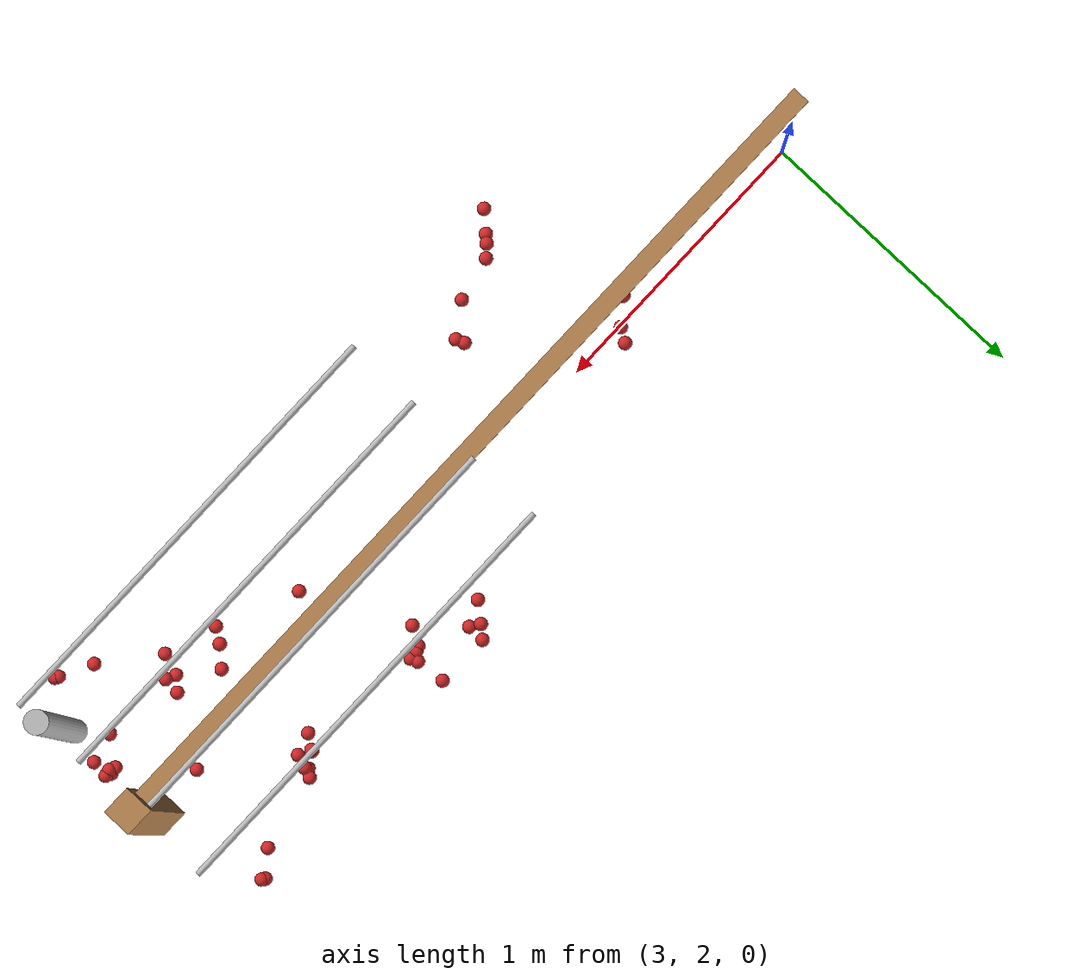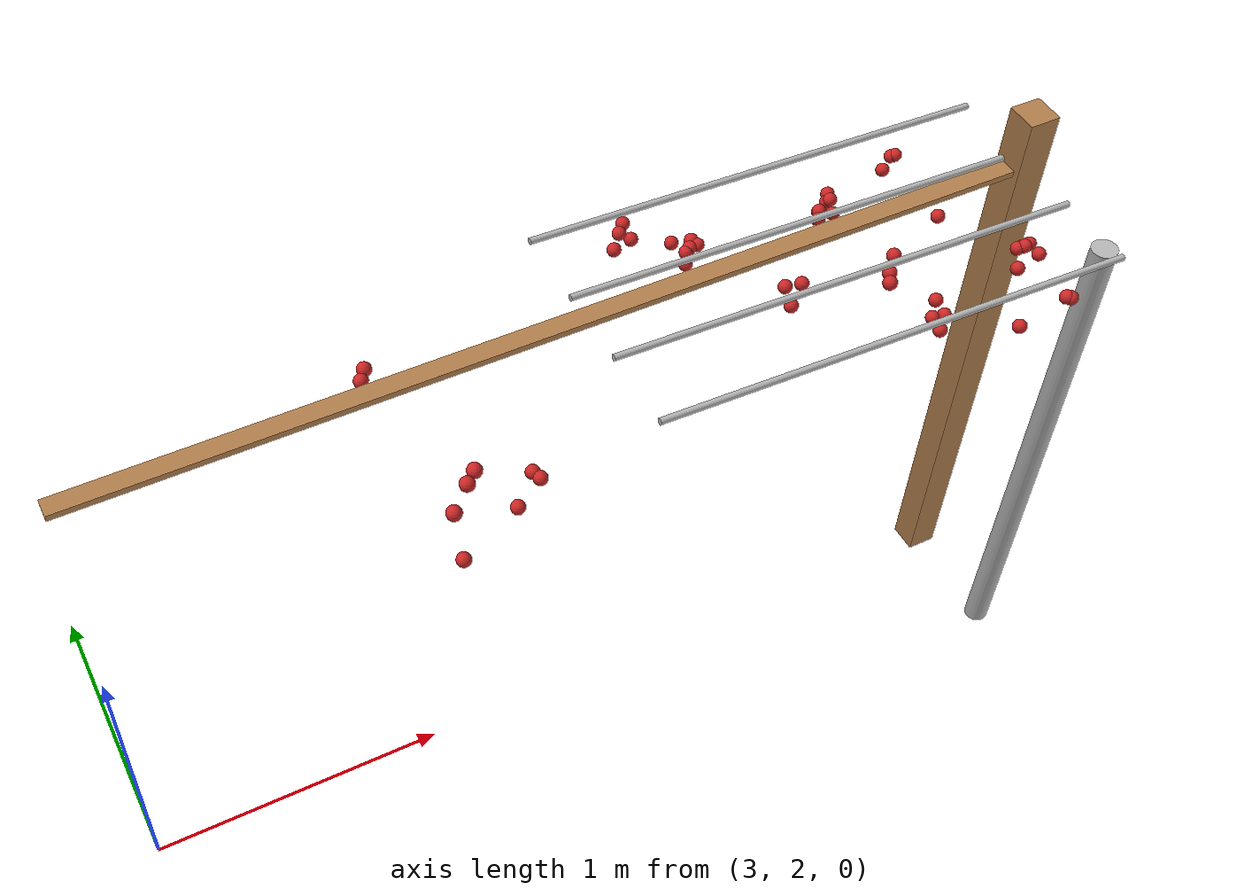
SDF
<sdf version="1.4">
 <model name="pergola">
  <include><name>post_14</name><pose>6.0 2.0 0 0 0 0</pose><uri>model://post</uri></include>
  <link name="beam_8">
   <pose>4.5 2.0 1.81 0 0 0</pose>
   <collision name="collision"><geometry><box><size>3.0 0.06 0.02</size></box></geometry></collision>
   <visual name="visual">
    <geometry><box><size>3.0 0.06 0.02</size></box></geometry>
    <material>
     <script>
      <uri>model://post/materials/scripts</uri>
      <uri>model://post/materials/textures</uri>
      <name>Post/Wood</name>
     </script>
    </material>
   </visual>
   <inertial>
    <mass>5</mass>
    <inertia>
     <ixx>0.0016666666666666668</ixx>
     <ixy>0.0</ixy>
     <ixz>0.0</ixz>
     <iyy>3.7515</iyy>
     <iyz>0.0</iyz>
     <izz>3.750166666666667</izz>
    </inertia>
   </inertial>
  </link>
  <include><name>tree_11</name><pose>6.0 1.6 0 0 0 0</pose><uri>model://tree_trunk</uri></include>
  <link name="vine_53">
   <pose>5.25 1.53 1.85 0 -1.5374753309166493 0</pose>
   <collision name="collision">
    <geometry><cylinder><radius>0.01</radius><length>1.5008331019803633</length></cylinder></geometry>
   </collision>
   <visual name="visual">
    <geometry><cylinder><radius>0.01</radius><length>1.5008331019803633</length></cylinder></geometry>
    <material>
     <script>
      <uri>model://tree_trunk/materials/scripts</uri>
      <uri>model://tree_trunk/materials/textures</uri>
      <name>Tree/Bark</name>
     </script>
    </material>
   </visual>
   <inertial>
    <mass>5</mass>
    <inertia>
     <ixx>0.9386666666666668</ixx>
     <ixy>0.0</ixy>
     <ixz>0.0</ixz>
     <iyy>0.9386666666666668</iyy>
     <iyz>0.0</iyz>
     <izz>0.00025</izz>
    </inertia>
   </inertial>
  </link>
  <link name="vine_55">
   <pose>5.25 1.78 1.85 0 -1.5374753309166493 0</pose>
   <collision name="collision">
    <geometry><cylinder><radius>0.01</radius><length>1.5008331019803633</length></cylinder></geometry>
   </collision>
   <visual name="visual">
    <geometry><cylinder><radius>0.01</radius><length>1.5008331019803633</length></cylinder></geometry>
    <material>
     <script>
      <uri>model://tree_trunk/materials/scripts</uri>
      <uri>model://tree_trunk/materials/textures</uri>
      <name>Tree/Bark</name>
     </script>
    </material>
   </visual>
   <inertial>
    <mass>5</mass>
    <inertia>
     <ixx>0.9386666666666668</ixx>
     <ixy>0.0</ixy>
     <ixz>0.0</ixz>
     <iyy>0.9386666666666668</iyy>
     <iyz>0.0</iyz>
     <izz>0.00025</izz>
    </inertia>
   </inertial>
  </link>
  <link name="vine_57">
   <pose>5.25 2.03 1.85 0 -1.5374753309166493 0</pose>
   <collision name="collision">
    <geometry><cylinder><radius>0.01</radius><length>1.5008331019803633</length></cylinder></geometry>
   </collision>
   <visual name="visual">
    <geometry><cylinder><radius>0.01</radius><length>1.5008331019803633</length></cylinder></geometry>
    <material>
     <script>
      <uri>model://tree_trunk/materials/scripts</uri>
      <uri>model://tree_trunk/materials/textures</uri>
      <name>Tree/Bark</name>
     </script>
    </material>
   </visual>
   <inertial>
    <mass>5</mass>
    <inertia>
     <ixx>0.9386666666666668</ixx>
     <ixy>0.0</ixy>
     <ixz>0.0</ixz>
     <iyy>0.9386666666666668</iyy>
     <iyz>0.0</iyz>
     <izz>0.00025</izz>
    </inertia>
   </inertial>
  </link>
  <link name="vine_59">
   <pose>5.25 2.28 1.85 0 -1.5374753309166493 0</pose>
   <collision name="collision">
    <geometry><cylinder><radius>0.01</radius><length>1.5008331019803633</length></cylinder></geometry>
   </collision>
   <visual name="visual">
    <geometry><cylinder><radius>0.01</radius><length>1.5008331019803633</length></cylinder></geometry>
    <material>
     <script>
      <uri>model://tree_trunk/materials/scripts</uri>
      <uri>model://tree_trunk/materials/textures</uri>
      <name>Tree/Bark</name>
     </script>
    </material>
   </visual>
   <inertial>
    <mass>5</mass>
    <inertia>
     <ixx>0.9386666666666668</ixx>
     <ixy>0.0</ixy>
     <ixz>0.0</ixz>
     <iyy>0.9386666666666668</iyy>
     <iyz>0.0</iyz>
     <izz>0.00025</izz>
    </inertia>
   </inertial>
  </link>
  <link name="fruit_34">
   <pose>5.774526865186715 2.0521322052493067 1.6482340957908381 0 0 0</pose>
   <collision name="fruit_collision_34"><geometry><sphere><radius>0.022</radius></sphere></geometry></collision>
   <visual name="visual">
    <geometry><sphere><radius>0.022</radius></sphere></geometry>
    <material><script><name>Gazebo/Red</name></script></material>
   </visual>
   <inertial>
    <mass>0.05</mass>
    <inertia>
     <ixx>9.679999999999999e-06</ixx>
     <ixy>0.0</ixy>
     <ixz>0.0</ixz>
     <iyy>9.679999999999999e-06</iyy>
     <iyz>0.0</iyz>
     <izz>9.679999999999999e-06</izz>
    </inertia>
   </inertial>
   <sensor name="fruit_contact_34" type="contact">
    <plugin name="contact_plugin_34" filename="libcontact_plugin.so"/>
    <contact><collision>fruit_collision_34</collision><topic>fruit_contact_topic_34</topic></contact>
   </sensor>
  </link>
  <link name="fruit_50">
   <pose>3.8211082510275456 2.0212028844527956 1.794791626858286 0 0 0</pose>
   <collision name="fruit_collision_50"><geometry><sphere><radius>0.022</radius></sphere></geometry></collision>
   <visual name="visual">
    <geometry><sphere><radius>0.022</radius></sphere></geometry>
    <material><script><name>Gazebo/Red</name></script></material>
   </visual>
   <inertial>
    <mass>0.05</mass>
    <inertia>
     <ixx>9.679999999999999e-06</ixx>
     <ixy>0.0</ixy>
     <ixz>0.0</ixz>
     <iyy>9.679999999999999e-06</iyy>
     <iyz>0.0</iyz>
     <izz>9.679999999999999e-06</izz>
    </inertia>
   </inertial>
   <sensor name="fruit_contact_50" type="contact">
    <plugin name="contact_plugin_50" filename="libcontact_plugin.so"/>
    <contact><collision>fruit_collision_50</collision><topic>fruit_contact_topic_50</topic></contact>
   </sensor>
  </link>
  <link name="fruit_75">
   <pose>4.157432896309954 1.6544012899420455 1.573133336098839 0 0 0</pose>
   <collision name="fruit_collision_75"><geometry><sphere><radius>0.022</radius></sphere></geometry></collision>
   <visual name="visual">
    <geometry><sphere><radius>0.022</radius></sphere></geometry>
    <material><script><name>Gazebo/Red</name></script></material>
   </visual>
   <inertial>
    <mass>0.05</mass>
    <inertia>
     <ixx>9.679999999999999e-06</ixx>
     <ixy>0.0</ixy>
     <ixz>0.0</ixz>
     <iyy>9.679999999999999e-06</iyy>
     <iyz>0.0</iyz>
     <izz>9.679999999999999e-06</izz>
    </inertia>
   </inertial>
   <sensor name="fruit_contact_75" type="contact">
    <plugin name="contact_plugin_75" filename="libcontact_plugin.so"/>
    <contact><collision>fruit_collision_75</collision><topic>fruit_contact_topic_75</topic></contact>
   </sensor>
  </link>
  <link name="fruit_82">
   <pose>3.9186838672898454 1.528496420877327 1.823706306297951 0 0 0</pose>
   <collision name="fruit_collision_82"><geometry><sphere><radius>0.022</radius></sphere></geometry></collision>
   <visual name="visual">
    <geometry><sphere><radius>0.022</radius></sphere></geometry>
    <material><script><name>Gazebo/Red</name></script></material>
   </visual>
   <inertial>
    <mass>0.05</mass>
    <inertia>
     <ixx>9.679999999999999e-06</ixx>
     <ixy>0.0</ixy>
     <ixz>0.0</ixz>
     <iyy>9.679999999999999e-06</iyy>
     <iyz>0.0</iyz>
     <izz>9.679999999999999e-06</izz>
    </inertia>
   </inertial>
   <sensor name="fruit_contact_82" type="contact">
    <plugin name="contact_plugin_82" filename="libcontact_plugin.so"/>
    <contact><collision>fruit_collision_82</collision><topic>fruit_contact_topic_82</topic></contact>
   </sensor>
  </link>
  <link name="fruit_83">
   <pose>5.058644379294178 2.414018382648379 1.5297664557481694 0 0 0</pose>
   <collision name="fruit_collision_83"><geometry><sphere><radius>0.022</radius></sphere></geometry></collision>
   <visual name="visual">
    <geometry><sphere><radius>0.022</radius></sphere></geometry>
    <material><script><name>Gazebo/Red</name></script></material>
   </visual>
   <inertial>
    <mass>0.05</mass>
    <inertia>
     <ixx>9.679999999999999e-06</ixx>
     <ixy>0.0</ixy>
     <ixz>0.0</ixz>
     <iyy>9.679999999999999e-06</iyy>
     <iyz>0.0</iyz>
     <izz>9.679999999999999e-06</izz>
    </inertia>
   </inertial>
   <sensor name="fruit_contact_83" type="contact">
    <plugin name="contact_plugin_83" filename="libcontact_plugin.so"/>
    <contact><collision>fruit_collision_83</collision><topic>fruit_contact_topic_83</topic></contact>
   </sensor>
  </link>
  <link name="fruit_85">
   <pose>5.754436804988945 1.5957983701257321 1.5985775554802049 0 0 0</pose>
   <collision name="fruit_collision_85"><geometry><sphere><radius>0.022</radius></sphere></geometry></collision>
   <visual name="visual">
    <geometry><sphere><radius>0.022</radius></sphere></geometry>
    <material><script><name>Gazebo/Red</name></script></material>
   </visual>
   <inertial>
    <mass>0.05</mass>
    <inertia>
     <ixx>9.679999999999999e-06</ixx>
     <ixy>0.0</ixy>
     <ixz>0.0</ixz>
     <iyy>9.679999999999999e-06</iyy>
     <iyz>0.0</iyz>
     <izz>9.679999999999999e-06</izz>
    </inertia>
   </inertial>
   <sensor name="fruit_contact_85" type="contact">
    <plugin name="contact_plugin_85" filename="libcontact_plugin.so"/>
    <contact><collision>fruit_collision_85</collision><topic>fruit_contact_topic_85</topic></contact>
   </sensor>
  </link>
  <link name="fruit_87">
   <pose>5.459513977028177 2.224504422915766 1.6211727621777672 0 0 0</pose>
   <collision name="fruit_collision_87"><geometry><sphere><radius>0.022</radius></sphere></geometry></collision>
   <visual name="visual">
    <geometry><sphere><radius>0.022</radius></sphere></geometry>
    <material><script><name>Gazebo/Red</name></script></material>
   </visual>
   <inertial>
    <mass>0.05</mass>
    <inertia>
     <ixx>9.679999999999999e-06</ixx>
     <ixy>0.0</ixy>
     <ixz>0.0</ixz>
     <iyy>9.679999999999999e-06</iyy>
     <iyz>0.0</iyz>
     <izz>9.679999999999999e-06</izz>
    </inertia>
   </inertial>
   <sensor name="fruit_contact_87" type="contact">
    <plugin name="contact_plugin_87" filename="libcontact_plugin.so"/>
    <contact><collision>fruit_collision_87</collision><topic>fruit_contact_topic_87</topic></contact>
   </sensor>
  </link>
  <link name="fruit_89">
   <pose>3.956462008325255 1.568141206261927 1.5605742490254866 0 0 0</pose>
   <collision name="fruit_collision_89"><geometry><sphere><radius>0.022</radius></sphere></geometry></collision>
   <visual name="visual">
    <geometry><sphere><radius>0.022</radius></sphere></geometry>
    <material><script><name>Gazebo/Red</name></script></material>
   </visual>
   <inertial>
    <mass>0.05</mass>
    <inertia>
     <ixx>9.679999999999999e-06</ixx>
     <ixy>0.0</ixy>
     <ixz>0.0</ixz>
     <iyy>9.679999999999999e-06</iyy>
     <iyz>0.0</iyz>
     <izz>9.679999999999999e-06</izz>
    </inertia>
   </inertial>
   <sensor name="fruit_contact_89" type="contact">
    <plugin name="contact_plugin_89" filename="libcontact_plugin.so"/>
    <contact><collision>fruit_collision_89</collision><topic>fruit_contact_topic_89</topic></contact>
   </sensor>
  </link>
  <link name="fruit_91">
   <pose>5.802791198064349 2.373879916377492 1.5739618234148434 0 0 0</pose>
   <collision name="fruit_collision_91"><geometry><sphere><radius>0.022</radius></sphere></geometry></collision>
   <visual name="visual">
    <geometry><sphere><radius>0.022</radius></sphere></geometry>
    <material><script><name>Gazebo/Red</name></script></material>
   </visual>
   <inertial>
    <mass>0.05</mass>
    <inertia>
     <ixx>9.679999999999999e-06</ixx>
     <ixy>0.0</ixy>
     <ixz>0.0</ixz>
     <iyy>9.679999999999999e-06</iyy>
     <iyz>0.0</iyz>
     <izz>9.679999999999999e-06</izz>
    </inertia>
   </inertial>
   <sensor name="fruit_contact_91" type="contact">
    <plugin name="contact_plugin_91" filename="libcontact_plugin.so"/>
    <contact><collision>fruit_collision_91</collision><topic>fruit_contact_topic_91</topic></contact>
   </sensor>
  </link>
  <link name="fruit_94">
   <pose>5.159846447617254 1.9078280667122707 1.6652576838666382 0 0 0</pose>
   <collision name="fruit_collision_94"><geometry><sphere><radius>0.022</radius></sphere></geometry></collision>
   <visual name="visual">
    <geometry><sphere><radius>0.022</radius></sphere></geometry>
    <material><script><name>Gazebo/Red</name></script></material>
   </visual>
   <inertial>
    <mass>0.05</mass>
    <inertia>
     <ixx>9.679999999999999e-06</ixx>
     <ixy>0.0</ixy>
     <ixz>0.0</ixz>
     <iyy>9.679999999999999e-06</iyy>
     <iyz>0.0</iyz>
     <izz>9.679999999999999e-06</izz>
    </inertia>
   </inertial>
   <sensor name="fruit_contact_94" type="contact">
    <plugin name="contact_plugin_94" filename="libcontact_plugin.so"/>
    <contact><collision>fruit_collision_94</collision><topic>fruit_contact_topic_94</topic></contact>
   </sensor>
  </link>
  <link name="fruit_104">
   <pose>4.80422927970657 2.3279642003623073 1.6779828249168487 0 0 0</pose>
   <collision name="fruit_collision_104"><geometry><sphere><radius>0.022</radius></sphere></geometry></collision>
   <visual name="visual">
    <geometry><sphere><radius>0.022</radius></sphere></geometry>
    <material><script><name>Gazebo/Red</name></script></material>
   </visual>
   <inertial>
    <mass>0.05</mass>
    <inertia>
     <ixx>9.679999999999999e-06</ixx>
     <ixy>0.0</ixy>
     <ixz>0.0</ixz>
     <iyy>9.679999999999999e-06</iyy>
     <iyz>0.0</iyz>
     <izz>9.679999999999999e-06</izz>
    </inertia>
   </inertial>
   <sensor name="fruit_contact_104" type="contact">
    <plugin name="contact_plugin_104" filename="libcontact_plugin.so"/>
    <contact><collision>fruit_collision_104</collision><topic>fruit_contact_topic_104</topic></contact>
   </sensor>
  </link>
  <link name="fruit_107">
   <pose>4.998689614279883 2.232698899707509 1.6202635907886294 0 0 0</pose>
   <collision name="fruit_collision_107"><geometry><sphere><radius>0.022</radius></sphere></geometry></collision>
   <visual name="visual">
    <geometry><sphere><radius>0.022</radius></sphere></geometry>
    <material><script><name>Gazebo/Red</name></script></material>
   </visual>
   <inertial>
    <mass>0.05</mass>
    <inertia>
     <ixx>9.679999999999999e-06</ixx>
     <ixy>0.0</ixy>
     <ixz>0.0</ixz>
     <iyy>9.679999999999999e-06</iyy>
     <iyz>0.0</iyz>
     <izz>9.679999999999999e-06</izz>
    </inertia>
   </inertial>
   <sensor name="fruit_contact_107" type="contact">
    <plugin name="contact_plugin_107" filename="libcontact_plugin.so"/>
    <contact><collision>fruit_collision_107</collision><topic>fruit_contact_topic_107</topic></contact>
   </sensor>
  </link>
  <link name="fruit_114">
   <pose>5.412163071134331 1.7989136187695607 1.742437584145862 0 0 0</pose>
   <collision name="fruit_collision_114"><geometry><sphere><radius>0.022</radius></sphere></geometry></collision>
   <visual name="visual">
    <geometry><sphere><radius>0.022</radius></sphere></geometry>
    <material><script><name>Gazebo/Red</name></script></material>
   </visual>
   <inertial>
    <mass>0.05</mass>
    <inertia>
     <ixx>9.679999999999999e-06</ixx>
     <ixy>0.0</ixy>
     <ixz>0.0</ixz>
     <iyy>9.679999999999999e-06</iyy>
     <iyz>0.0</iyz>
     <izz>9.679999999999999e-06</izz>
    </inertia>
   </inertial>
   <sensor name="fruit_contact_114" type="contact">
    <plugin name="contact_plugin_114" filename="libcontact_plugin.so"/>
    <contact><collision>fruit_collision_114</collision><topic>fruit_contact_topic_114</topic></contact>
   </sensor>
  </link>
  <link name="fruit_145">
   <pose>5.583333734365892 1.7304436619730743 1.5364940392933226 0 0 0</pose>
   <collision name="fruit_collision_145"><geometry><sphere><radius>0.022</radius></sphere></geometry></collision>
   <visual name="visual">
    <geometry><sphere><radius>0.022</radius></sphere></geometry>
    <material><script><name>Gazebo/Red</name></script></material>
   </visual>
   <inertial>
    <mass>0.05</mass>
    <inertia>
     <ixx>9.679999999999999e-06</ixx>
     <ixy>0.0</ixy>
     <ixz>0.0</ixz>
     <iyy>9.679999999999999e-06</iyy>
     <iyz>0.0</iyz>
     <izz>9.679999999999999e-06</izz>
    </inertia>
   </inertial>
   <sensor name="fruit_contact_145" type="contact">
    <plugin name="contact_plugin_145" filename="libcontact_plugin.so"/>
    <contact><collision>fruit_collision_145</collision><topic>fruit_contact_topic_145</topic></contact>
   </sensor>
  </link>
  <link name="fruit_152">
   <pose>5.877671136044582 1.7798271889963877 1.620259435995187 0 0 0</pose>
   <collision name="fruit_collision_152"><geometry><sphere><radius>0.022</radius></sphere></geometry></collision>
   <visual name="visual">
    <geometry><sphere><radius>0.022</radius></sphere></geometry>
    <material><script><name>Gazebo/Red</name></script></material>
   </visual>
   <inertial>
    <mass>0.05</mass>
    <inertia>
     <ixx>9.679999999999999e-06</ixx>
     <ixy>0.0</ixy>
     <ixz>0.0</ixz>
     <iyy>9.679999999999999e-06</iyy>
     <iyz>0.0</iyz>
     <izz>9.679999999999999e-06</izz>
    </inertia>
   </inertial>
   <sensor name="fruit_contact_152" type="contact">
    <plugin name="contact_plugin_152" filename="libcontact_plugin.so"/>
    <contact><collision>fruit_collision_152</collision><topic>fruit_contact_topic_152</topic></contact>
   </sensor>
  </link>
  <link name="fruit_157">
   <pose>5.049208604171384 2.296246360209251 1.6115604856060919 0 0 0</pose>
   <collision name="fruit_collision_157"><geometry><sphere><radius>0.022</radius></sphere></geometry></collision>
   <visual name="visual">
    <geometry><sphere><radius>0.022</radius></sphere></geometry>
    <material><script><name>Gazebo/Red</name></script></material>
   </visual>
   <inertial>
    <mass>0.05</mass>
    <inertia>
     <ixx>9.679999999999999e-06</ixx>
     <ixy>0.0</ixy>
     <ixz>0.0</ixz>
     <iyy>9.679999999999999e-06</iyy>
     <iyz>0.0</iyz>
     <izz>9.679999999999999e-06</izz>
    </inertia>
   </inertial>
   <sensor name="fruit_contact_157" type="contact">
    <plugin name="contact_plugin_157" filename="libcontact_plugin.so"/>
    <contact><collision>fruit_collision_157</collision><topic>fruit_contact_topic_157</topic></contact>
   </sensor>
  </link>
  <link name="fruit_177">
   <pose>5.4923204032210435 2.2704755800701895 1.6026721185577912 0 0 0</pose>
   <collision name="fruit_collision_177"><geometry><sphere><radius>0.022</radius></sphere></geometry></collision>
   <visual name="visual">
    <geometry><sphere><radius>0.022</radius></sphere></geometry>
    <material><script><name>Gazebo/Red</name></script></material>
   </visual>
   <inertial>
    <mass>0.05</mass>
    <inertia>
     <ixx>9.679999999999999e-06</ixx>
     <ixy>0.0</ixy>
     <ixz>0.0</ixz>
     <iyy>9.679999999999999e-06</iyy>
     <iyz>0.0</iyz>
     <izz>9.679999999999999e-06</izz>
    </inertia>
   </inertial>
   <sensor name="fruit_contact_177" type="contact">
    <plugin name="contact_plugin_177" filename="libcontact_plugin.so"/>
    <contact><collision>fruit_collision_177</collision><topic>fruit_contact_topic_177</topic></contact>
   </sensor>
  </link>
  <link name="fruit_195">
   <pose>5.249236135146322 1.9881662277160639 1.6450259633704147 0 0 0</pose>
   <collision name="fruit_collision_195"><geometry><sphere><radius>0.022</radius></sphere></geometry></collision>
   <visual name="visual">
    <geometry><sphere><radius>0.022</radius></sphere></geometry>
    <material><script><name>Gazebo/Red</name></script></material>
   </visual>
   <inertial>
    <mass>0.05</mass>
    <inertia>
     <ixx>9.679999999999999e-06</ixx>
     <ixy>0.0</ixy>
     <ixz>0.0</ixz>
     <iyy>9.679999999999999e-06</iyy>
     <iyz>0.0</iyz>
     <izz>9.679999999999999e-06</izz>
    </inertia>
   </inertial>
   <sensor name="fruit_contact_195" type="contact">
    <plugin name="contact_plugin_195" filename="libcontact_plugin.so"/>
    <contact><collision>fruit_collision_195</collision><topic>fruit_contact_topic_195</topic></contact>
   </sensor>
  </link>
  <link name="fruit_207">
   <pose>5.942102102008424 1.8623589062769437 1.6060157953697836 0 0 0</pose>
   <collision name="fruit_collision_207"><geometry><sphere><radius>0.022</radius></sphere></geometry></collision>
   <visual name="visual">
    <geometry><sphere><radius>0.022</radius></sphere></geometry>
    <material><script><name>Gazebo/Red</name></script></material>
   </visual>
   <inertial>
    <mass>0.05</mass>
    <inertia>
     <ixx>9.679999999999999e-06</ixx>
     <ixy>0.0</ixy>
     <ixz>0.0</ixz>
     <iyy>9.679999999999999e-06</iyy>
     <iyz>0.0</iyz>
     <izz>9.679999999999999e-06</izz>
    </inertia>
   </inertial>
   <sensor name="fruit_contact_207" type="contact">
    <plugin name="contact_plugin_207" filename="libcontact_plugin.so"/>
    <contact><collision>fruit_collision_207</collision><topic>fruit_contact_topic_207</topic></contact>
   </sensor>
  </link>
  <link name="fruit_208">
   <pose>5.032615775787639 2.2888932451619763 1.6066804180607057 0 0 0</pose>
   <collision name="fruit_collision_208"><geometry><sphere><radius>0.022</radius></sphere></geometry></collision>
   <visual name="visual">
    <geometry><sphere><radius>0.022</radius></sphere></geometry>
    <material><script><name>Gazebo/Red</name></script></material>
   </visual>
   <inertial>
    <mass>0.05</mass>
    <inertia>
     <ixx>9.679999999999999e-06</ixx>
     <ixy>0.0</ixy>
     <ixz>0.0</ixz>
     <iyy>9.679999999999999e-06</iyy>
     <iyz>0.0</iyz>
     <izz>9.679999999999999e-06</izz>
    </inertia>
   </inertial>
   <sensor name="fruit_contact_208" type="contact">
    <plugin name="contact_plugin_208" filename="libcontact_plugin.so"/>
    <contact><collision>fruit_collision_208</collision><topic>fruit_contact_topic_208</topic></contact>
   </sensor>
  </link>
  <link name="fruit_211">
   <pose>5.877277754397528 2.4328555021479743 1.5576581599371886 0 0 0</pose>
   <collision name="fruit_collision_211"><geometry><sphere><radius>0.022</radius></sphere></geometry></collision>
   <visual name="visual">
    <geometry><sphere><radius>0.022</radius></sphere></geometry>
    <material><script><name>Gazebo/Red</name></script></material>
   </visual>
   <inertial>
    <mass>0.05</mass>
    <inertia>
     <ixx>9.679999999999999e-06</ixx>
     <ixy>0.0</ixy>
     <ixz>0.0</ixz>
     <iyy>9.679999999999999e-06</iyy>
     <iyz>0.0</iyz>
     <izz>9.679999999999999e-06</izz>
    </inertia>
   </inertial>
   <sensor name="fruit_contact_211" type="contact">
    <plugin name="contact_plugin_211" filename="libcontact_plugin.so"/>
    <contact><collision>fruit_collision_211</collision><topic>fruit_contact_topic_211</topic></contact>
   </sensor>
  </link>
  <link name="fruit_213">
   <pose>5.9639935561905 1.8659235977885358 1.601489313213986 0 0 0</pose>
   <collision name="fruit_collision_213"><geometry><sphere><radius>0.022</radius></sphere></geometry></collision>
   <visual name="visual">
    <geometry><sphere><radius>0.022</radius></sphere></geometry>
    <material><script><name>Gazebo/Red</name></script></material>
   </visual>
   <inertial>
    <mass>0.05</mass>
    <inertia>
     <ixx>9.679999999999999e-06</ixx>
     <ixy>0.0</ixy>
     <ixz>0.0</ixz>
     <iyy>9.679999999999999e-06</iyy>
     <iyz>0.0</iyz>
     <izz>9.679999999999999e-06</izz>
    </inertia>
   </inertial>
   <sensor name="fruit_contact_213" type="contact">
    <plugin name="contact_plugin_213" filename="libcontact_plugin.so"/>
    <contact><collision>fruit_collision_213</collision><topic>fruit_contact_topic_213</topic></contact>
   </sensor>
  </link>
  <link name="fruit_227">
   <pose>4.2597573813946665 1.7240518831398615 1.5653774266928455 0 0 0</pose>
   <collision name="fruit_collision_227"><geometry><sphere><radius>0.022</radius></sphere></geometry></collision>
   <visual name="visual">
    <geometry><sphere><radius>0.022</radius></sphere></geometry>
    <material><script><name>Gazebo/Red</name></script></material>
   </visual>
   <inertial>
    <mass>0.05</mass>
    <inertia>
     <ixx>9.679999999999999e-06</ixx>
     <ixy>0.0</ixy>
     <ixz>0.0</ixz>
     <iyy>9.679999999999999e-06</iyy>
     <iyz>0.0</iyz>
     <izz>9.679999999999999e-06</izz>
    </inertia>
   </inertial>
   <sensor name="fruit_contact_227" type="contact">
    <plugin name="contact_plugin_227" filename="libcontact_plugin.so"/>
    <contact><collision>fruit_collision_227</collision><topic>fruit_contact_topic_227</topic></contact>
   </sensor>
  </link>
  <link name="fruit_231">
   <pose>3.991070745218517 1.6067411499962172 1.813265376457121 0 0 0</pose>
   <collision name="fruit_collision_231"><geometry><sphere><radius>0.022</radius></sphere></geometry></collision>
   <visual name="visual">
    <geometry><sphere><radius>0.022</radius></sphere></geometry>
    <material><script><name>Gazebo/Red</name></script></material>
   </visual>
   <inertial>
    <mass>0.05</mass>
    <inertia>
     <ixx>9.679999999999999e-06</ixx>
     <ixy>0.0</ixy>
     <ixz>0.0</ixz>
     <iyy>9.679999999999999e-06</iyy>
     <iyz>0.0</iyz>
     <izz>9.679999999999999e-06</izz>
    </inertia>
   </inertial>
   <sensor name="fruit_contact_231" type="contact">
    <plugin name="contact_plugin_231" filename="libcontact_plugin.so"/>
    <contact><collision>fruit_collision_231</collision><topic>fruit_contact_topic_231</topic></contact>
   </sensor>
  </link>
  <link name="fruit_232">
   <pose>5.887386990213997 2.4256892391077822 1.5641177727466637 0 0 0</pose>
   <collision name="fruit_collision_232"><geometry><sphere><radius>0.022</radius></sphere></geometry></collision>
   <visual name="visual">
    <geometry><sphere><radius>0.022</radius></sphere></geometry>
    <material><script><name>Gazebo/Red</name></script></material>
   </visual>
   <inertial>
    <mass>0.05</mass>
    <inertia>
     <ixx>9.679999999999999e-06</ixx>
     <ixy>0.0</ixy>
     <ixz>0.0</ixz>
     <iyy>9.679999999999999e-06</iyy>
     <iyz>0.0</iyz>
     <izz>9.679999999999999e-06</izz>
    </inertia>
   </inertial>
   <sensor name="fruit_contact_232" type="contact">
    <plugin name="contact_plugin_232" filename="libcontact_plugin.so"/>
    <contact><collision>fruit_collision_232</collision><topic>fruit_contact_topic_232</topic></contact>
   </sensor>
  </link>
  <link name="fruit_239">
   <pose>3.8963078821163157 2.0807879305289956 1.7808054475599573 0 0 0</pose>
   <collision name="fruit_collision_239"><geometry><sphere><radius>0.022</radius></sphere></geometry></collision>
   <visual name="visual">
    <geometry><sphere><radius>0.022</radius></sphere></geometry>
    <material><script><name>Gazebo/Red</name></script></material>
   </visual>
   <inertial>
    <mass>0.05</mass>
    <inertia>
     <ixx>9.679999999999999e-06</ixx>
     <ixy>0.0</ixy>
     <ixz>0.0</ixz>
     <iyy>9.679999999999999e-06</iyy>
     <iyz>0.0</iyz>
     <izz>9.679999999999999e-06</izz>
    </inertia>
   </inertial>
   <sensor name="fruit_contact_239" type="contact">
    <plugin name="contact_plugin_239" filename="libcontact_plugin.so"/>
    <contact><collision>fruit_collision_239</collision><topic>fruit_contact_topic_239</topic></contact>
   </sensor>
  </link>
  <link name="fruit_247">
   <pose>5.6452637804927415 1.8401545453768702 1.5360197755879494 0 0 0</pose>
   <collision name="fruit_collision_247"><geometry><sphere><radius>0.022</radius></sphere></geometry></collision>
   <visual name="visual">
    <geometry><sphere><radius>0.022</radius></sphere></geometry>
    <material><script><name>Gazebo/Red</name></script></material>
   </visual>
   <inertial>
    <mass>0.05</mass>
    <inertia>
     <ixx>9.679999999999999e-06</ixx>
     <ixy>0.0</ixy>
     <ixz>0.0</ixz>
     <iyy>9.679999999999999e-06</iyy>
     <iyz>0.0</iyz>
     <izz>9.679999999999999e-06</izz>
    </inertia>
   </inertial>
   <sensor name="fruit_contact_247" type="contact">
    <plugin name="contact_plugin_247" filename="libcontact_plugin.so"/>
    <contact><collision>fruit_collision_247</collision><topic>fruit_contact_topic_247</topic></contact>
   </sensor>
  </link>
  <link name="fruit_272">
   <pose>5.5387500045687075 2.298976544254299 1.6000956983395958 0 0 0</pose>
   <collision name="fruit_collision_272"><geometry><sphere><radius>0.022</radius></sphere></geometry></collision>
   <visual name="visual">
    <geometry><sphere><radius>0.022</radius></sphere></geometry>
    <material><script><name>Gazebo/Red</name></script></material>
   </visual>
   <inertial>
    <mass>0.05</mass>
    <inertia>
     <ixx>9.679999999999999e-06</ixx>
     <ixy>0.0</ixy>
     <ixz>0.0</ixz>
     <iyy>9.679999999999999e-06</iyy>
     <iyz>0.0</iyz>
     <izz>9.679999999999999e-06</izz>
    </inertia>
   </inertial>
   <sensor name="fruit_contact_272" type="contact">
    <plugin name="contact_plugin_272" filename="libcontact_plugin.so"/>
    <contact><collision>fruit_collision_272</collision><topic>fruit_contact_topic_272</topic></contact>
   </sensor>
  </link>
  <link name="fruit_287">
   <pose>5.6085507618995445 1.7989285313285688 1.5161056851700392 0 0 0</pose>
   <collision name="fruit_collision_287"><geometry><sphere><radius>0.022</radius></sphere></geometry></collision>
   <visual name="visual">
    <geometry><sphere><radius>0.022</radius></sphere></geometry>
    <material><script><name>Gazebo/Red</name></script></material>
   </visual>
   <inertial>
    <mass>0.05</mass>
    <inertia>
     <ixx>9.679999999999999e-06</ixx>
     <ixy>0.0</ixy>
     <ixz>0.0</ixz>
     <iyy>9.679999999999999e-06</iyy>
     <iyz>0.0</iyz>
     <izz>9.679999999999999e-06</izz>
    </inertia>
   </inertial>
   <sensor name="fruit_contact_287" type="contact">
    <plugin name="contact_plugin_287" filename="libcontact_plugin.so"/>
    <contact><collision>fruit_collision_287</collision><topic>fruit_contact_topic_287</topic></contact>
   </sensor>
  </link>
  <link name="fruit_288">
   <pose>5.077204753398232 2.2978051497066656 1.6110937936618825 0 0 0</pose>
   <collision name="fruit_collision_288"><geometry><sphere><radius>0.022</radius></sphere></geometry></collision>
   <visual name="visual">
    <geometry><sphere><radius>0.022</radius></sphere></geometry>
    <material><script><name>Gazebo/Red</name></script></material>
   </visual>
   <inertial>
    <mass>0.05</mass>
    <inertia>
     <ixx>9.679999999999999e-06</ixx>
     <ixy>0.0</ixy>
     <ixz>0.0</ixz>
     <iyy>9.679999999999999e-06</iyy>
     <iyz>0.0</iyz>
     <izz>9.679999999999999e-06</izz>
    </inertia>
   </inertial>
   <sensor name="fruit_contact_288" type="contact">
    <plugin name="contact_plugin_288" filename="libcontact_plugin.so"/>
    <contact><collision>fruit_collision_288</collision><topic>fruit_contact_topic_288</topic></contact>
   </sensor>
  </link>
  <link name="fruit_292">
   <pose>5.443767794964417 1.843786948394651 1.7300757405955005 0 0 0</pose>
   <collision name="fruit_collision_292"><geometry><sphere><radius>0.022</radius></sphere></geometry></collision>
   <visual name="visual">
    <geometry><sphere><radius>0.022</radius></sphere></geometry>
    <material><script><name>Gazebo/Red</name></script></material>
   </visual>
   <inertial>
    <mass>0.05</mass>
    <inertia>
     <ixx>9.679999999999999e-06</ixx>
     <ixy>0.0</ixy>
     <ixz>0.0</ixz>
     <iyy>9.679999999999999e-06</iyy>
     <iyz>0.0</iyz>
     <izz>9.679999999999999e-06</izz>
    </inertia>
   </inertial>
   <sensor name="fruit_contact_292" type="contact">
    <plugin name="contact_plugin_292" filename="libcontact_plugin.so"/>
    <contact><collision>fruit_collision_292</collision><topic>fruit_contact_topic_292</topic></contact>
   </sensor>
  </link>
  <link name="fruit_305">
   <pose>5.544665108245621 2.289442052882705 1.6157602375005555 0 0 0</pose>
   <collision name="fruit_collision_305"><geometry><sphere><radius>0.022</radius></sphere></geometry></collision>
   <visual name="visual">
    <geometry><sphere><radius>0.022</radius></sphere></geometry>
    <material><script><name>Gazebo/Red</name></script></material>
   </visual>
   <inertial>
    <mass>0.05</mass>
    <inertia>
     <ixx>9.679999999999999e-06</ixx>
     <ixy>0.0</ixy>
     <ixz>0.0</ixz>
     <iyy>9.679999999999999e-06</iyy>
     <iyz>0.0</iyz>
     <izz>9.679999999999999e-06</izz>
    </inertia>
   </inertial>
   <sensor name="fruit_contact_305" type="contact">
    <plugin name="contact_plugin_305" filename="libcontact_plugin.so"/>
    <contact><collision>fruit_collision_305</collision><topic>fruit_contact_topic_305</topic></contact>
   </sensor>
  </link>
  <link name="fruit_309">
   <pose>4.882247489716817 2.3647486611448807 1.657726878082377 0 0 0</pose>
   <collision name="fruit_collision_309"><geometry><sphere><radius>0.022</radius></sphere></geometry></collision>
   <visual name="visual">
    <geometry><sphere><radius>0.022</radius></sphere></geometry>
    <material><script><name>Gazebo/Red</name></script></material>
   </visual>
   <inertial>
    <mass>0.05</mass>
    <inertia>
     <ixx>9.679999999999999e-06</ixx>
     <ixy>0.0</ixy>
     <ixz>0.0</ixz>
     <iyy>9.679999999999999e-06</iyy>
     <iyz>0.0</iyz>
     <izz>9.679999999999999e-06</izz>
    </inertia>
   </inertial>
   <sensor name="fruit_contact_309" type="contact">
    <plugin name="contact_plugin_309" filename="libcontact_plugin.so"/>
    <contact><collision>fruit_collision_309</collision><topic>fruit_contact_topic_309</topic></contact>
   </sensor>
  </link>
  <link name="fruit_324">
   <pose>5.960241193618846 1.853719410436631 1.61509816358231 0 0 0</pose>
   <collision name="fruit_collision_324"><geometry><sphere><radius>0.022</radius></sphere></geometry></collision>
   <visual name="visual">
    <geometry><sphere><radius>0.022</radius></sphere></geometry>
    <material><script><name>Gazebo/Red</name></script></material>
   </visual>
   <inertial>
    <mass>0.05</mass>
    <inertia>
     <ixx>9.679999999999999e-06</ixx>
     <ixy>0.0</ixy>
     <ixz>0.0</ixz>
     <iyy>9.679999999999999e-06</iyy>
     <iyz>0.0</iyz>
     <izz>9.679999999999999e-06</izz>
    </inertia>
   </inertial>
   <sensor name="fruit_contact_324" type="contact">
    <plugin name="contact_plugin_324" filename="libcontact_plugin.so"/>
    <contact><collision>fruit_collision_324</collision><topic>fruit_contact_topic_324</topic></contact>
   </sensor>
  </link>
  <link name="fruit_331">
   <pose>5.980726169808121 1.8578471198159172 1.6126305608516902 0 0 0</pose>
   <collision name="fruit_collision_331"><geometry><sphere><radius>0.022</radius></sphere></geometry></collision>
   <visual name="visual">
    <geometry><sphere><radius>0.022</radius></sphere></geometry>
    <material><script><name>Gazebo/Red</name></script></material>
   </visual>
   <inertial>
    <mass>0.05</mass>
    <inertia>
     <ixx>9.679999999999999e-06</ixx>
     <ixy>0.0</ixy>
     <ixz>0.0</ixz>
     <iyy>9.679999999999999e-06</iyy>
     <iyz>0.0</iyz>
     <izz>9.679999999999999e-06</izz>
    </inertia>
   </inertial>
   <sensor name="fruit_contact_331" type="contact">
    <plugin name="contact_plugin_331" filename="libcontact_plugin.so"/>
    <contact><collision>fruit_collision_331</collision><topic>fruit_contact_topic_331</topic></contact>
   </sensor>
  </link>
  <link name="fruit_339">
   <pose>5.490857319946922 2.2664444335422806 1.6084494540621577 0 0 0</pose>
   <collision name="fruit_collision_339"><geometry><sphere><radius>0.022</radius></sphere></geometry></collision>
   <visual name="visual">
    <geometry><sphere><radius>0.022</radius></sphere></geometry>
    <material><script><name>Gazebo/Red</name></script></material>
   </visual>
   <inertial>
    <mass>0.05</mass>
    <inertia>
     <ixx>9.679999999999999e-06</ixx>
     <ixy>0.0</ixy>
     <ixz>0.0</ixz>
     <iyy>9.679999999999999e-06</iyy>
     <iyz>0.0</iyz>
     <izz>9.679999999999999e-06</izz>
    </inertia>
   </inertial>
   <sensor name="fruit_contact_339" type="contact">
    <plugin name="contact_plugin_339" filename="libcontact_plugin.so"/>
    <contact><collision>fruit_collision_339</collision><topic>fruit_contact_topic_339</topic></contact>
   </sensor>
  </link>
  <link name="fruit_349">
   <pose>5.496215838958673 1.90051342335765 1.7289375767775204 0 0 0</pose>
   <collision name="fruit_collision_349"><geometry><sphere><radius>0.022</radius></sphere></geometry></collision>
   <visual name="visual">
    <geometry><sphere><radius>0.022</radius></sphere></geometry>
    <material><script><name>Gazebo/Red</name></script></material>
   </visual>
   <inertial>
    <mass>0.05</mass>
    <inertia>
     <ixx>9.679999999999999e-06</ixx>
     <ixy>0.0</ixy>
     <ixz>0.0</ixz>
     <iyy>9.679999999999999e-06</iyy>
     <iyz>0.0</iyz>
     <izz>9.679999999999999e-06</izz>
    </inertia>
   </inertial>
   <sensor name="fruit_contact_349" type="contact">
    <plugin name="contact_plugin_349" filename="libcontact_plugin.so"/>
    <contact><collision>fruit_collision_349</collision><topic>fruit_contact_topic_349</topic></contact>
   </sensor>
  </link>
  <link name="fruit_355">
   <pose>4.025775027219966 1.6367238832602384 1.8161642283206556 0 0 0</pose>
   <collision name="fruit_collision_355"><geometry><sphere><radius>0.022</radius></sphere></geometry></collision>
   <visual name="visual">
    <geometry><sphere><radius>0.022</radius></sphere></geometry>
    <material><script><name>Gazebo/Red</name></script></material>
   </visual>
   <inertial>
    <mass>0.05</mass>
    <inertia>
     <ixx>9.679999999999999e-06</ixx>
     <ixy>0.0</ixy>
     <ixz>0.0</ixz>
     <iyy>9.679999999999999e-06</iyy>
     <iyz>0.0</iyz>
     <izz>9.679999999999999e-06</izz>
    </inertia>
   </inertial>
   <sensor name="fruit_contact_355" type="contact">
    <plugin name="contact_plugin_355" filename="libcontact_plugin.so"/>
    <contact><collision>fruit_collision_355</collision><topic>fruit_contact_topic_355</topic></contact>
   </sensor>
  </link>
  <link name="fruit_365">
   <pose>5.556663177389219 2.3211486397718906 1.6101608607223934 0 0 0</pose>
   <collision name="fruit_collision_365"><geometry><sphere><radius>0.022</radius></sphere></geometry></collision>
   <visual name="visual">
    <geometry><sphere><radius>0.022</radius></sphere></geometry>
    <material><script><name>Gazebo/Red</name></script></material>
   </visual>
   <inertial>
    <mass>0.05</mass>
    <inertia>
     <ixx>9.679999999999999e-06</ixx>
     <ixy>0.0</ixy>
     <ixz>0.0</ixz>
     <iyy>9.679999999999999e-06</iyy>
     <iyz>0.0</iyz>
     <izz>9.679999999999999e-06</izz>
    </inertia>
   </inertial>
   <sensor name="fruit_contact_365" type="contact">
    <plugin name="contact_plugin_365" filename="libcontact_plugin.so"/>
    <contact><collision>fruit_collision_365</collision><topic>fruit_contact_topic_365</topic></contact>
   </sensor>
  </link>
  <link name="fruit_370">
   <pose>5.639714347491 1.7850838905922992 1.5253165896207366 0 0 0</pose>
   <collision name="fruit_collision_370"><geometry><sphere><radius>0.022</radius></sphere></geometry></collision>
   <visual name="visual">
    <geometry><sphere><radius>0.022</radius></sphere></geometry>
    <material><script><name>Gazebo/Red</name></script></material>
   </visual>
   <inertial>
    <mass>0.05</mass>
    <inertia>
     <ixx>9.679999999999999e-06</ixx>
     <ixy>0.0</ixy>
     <ixz>0.0</ixz>
     <iyy>9.679999999999999e-06</iyy>
     <iyz>0.0</iyz>
     <izz>9.679999999999999e-06</izz>
    </inertia>
   </inertial>
   <sensor name="fruit_contact_370" type="contact">
    <plugin name="contact_plugin_370" filename="libcontact_plugin.so"/>
    <contact><collision>fruit_collision_370</collision><topic>fruit_contact_topic_370</topic></contact>
   </sensor>
  </link>
  <link name="fruit_382">
   <pose>5.974394266765888 1.803908184665692 1.6182683221194614 0 0 0</pose>
   <collision name="fruit_collision_382"><geometry><sphere><radius>0.022</radius></sphere></geometry></collision>
   <visual name="visual">
    <geometry><sphere><radius>0.022</radius></sphere></geometry>
    <material><script><name>Gazebo/Red</name></script></material>
   </visual>
   <inertial>
    <mass>0.05</mass>
    <inertia>
     <ixx>9.679999999999999e-06</ixx>
     <ixy>0.0</ixy>
     <ixz>0.0</ixz>
     <iyy>9.679999999999999e-06</iyy>
     <iyz>0.0</iyz>
     <izz>9.679999999999999e-06</izz>
    </inertia>
   </inertial>
   <sensor name="fruit_contact_382" type="contact">
    <plugin name="contact_plugin_382" filename="libcontact_plugin.so"/>
    <contact><collision>fruit_collision_382</collision><topic>fruit_contact_topic_382</topic></contact>
   </sensor>
  </link>
  <link name="fruit_388">
   <pose>5.5301951193203545 2.24693974738793 1.599213915461603 0 0 0</pose>
   <collision name="fruit_collision_388"><geometry><sphere><radius>0.022</radius></sphere></geometry></collision>
   <visual name="visual">
    <geometry><sphere><radius>0.022</radius></sphere></geometry>
    <material><script><name>Gazebo/Red</name></script></material>
   </visual>
   <inertial>
    <mass>0.05</mass>
    <inertia>
     <ixx>9.679999999999999e-06</ixx>
     <ixy>0.0</ixy>
     <ixz>0.0</ixz>
     <iyy>9.679999999999999e-06</iyy>
     <iyz>0.0</iyz>
     <izz>9.679999999999999e-06</izz>
    </inertia>
   </inertial>
   <sensor name="fruit_contact_388" type="contact">
    <plugin name="contact_plugin_388" filename="libcontact_plugin.so"/>
    <contact><collision>fruit_collision_388</collision><topic>fruit_contact_topic_388</topic></contact>
   </sensor>
  </link>
  <link name="fruit_390">
   <pose>4.852150429083568 2.3854706100153074 1.6761717897168422 0 0 0</pose>
   <collision name="fruit_collision_390"><geometry><sphere><radius>0.022</radius></sphere></geometry></collision>
   <visual name="visual">
    <geometry><sphere><radius>0.022</radius></sphere></geometry>
    <material><script><name>Gazebo/Red</name></script></material>
   </visual>
   <inertial>
    <mass>0.05</mass>
    <inertia>
     <ixx>9.679999999999999e-06</ixx>
     <ixy>0.0</ixy>
     <ixz>0.0</ixz>
     <iyy>9.679999999999999e-06</iyy>
     <iyz>0.0</iyz>
     <izz>9.679999999999999e-06</izz>
    </inertia>
   </inertial>
   <sensor name="fruit_contact_390" type="contact">
    <plugin name="contact_plugin_390" filename="libcontact_plugin.so"/>
    <contact><collision>fruit_collision_390</collision><topic>fruit_contact_topic_390</topic></contact>
   </sensor>
  </link>
  <link name="fruit_416">
   <pose>4.884319368036999 2.4220578492845632 1.672610502170223 0 0 0</pose>
   <collision name="fruit_collision_416"><geometry><sphere><radius>0.022</radius></sphere></geometry></collision>
   <visual name="visual">
    <geometry><sphere><radius>0.022</radius></sphere></geometry>
    <material><script><name>Gazebo/Red</name></script></material>
   </visual>
   <inertial>
    <mass>0.05</mass>
    <inertia>
     <ixx>9.679999999999999e-06</ixx>
     <ixy>0.0</ixy>
     <ixz>0.0</ixz>
     <iyy>9.679999999999999e-06</iyy>
     <iyz>0.0</iyz>
     <izz>9.679999999999999e-06</izz>
    </inertia>
   </inertial>
   <sensor name="fruit_contact_416" type="contact">
    <plugin name="contact_plugin_416" filename="libcontact_plugin.so"/>
    <contact><collision>fruit_collision_416</collision><topic>fruit_contact_topic_416</topic></contact>
   </sensor>
  </link>
  <link name="fruit_417">
   <pose>5.854275050110059 1.550476568212816 1.714185379004354 0 0 0</pose>
   <collision name="fruit_collision_417"><geometry><sphere><radius>0.022</radius></sphere></geometry></collision>
   <visual name="visual">
    <geometry><sphere><radius>0.022</radius></sphere></geometry>
    <material><script><name>Gazebo/Red</name></script></material>
   </visual>
   <inertial>
    <mass>0.05</mass>
    <inertia>
     <ixx>9.679999999999999e-06</ixx>
     <ixy>0.0</ixy>
     <ixz>0.0</ixz>
     <iyy>9.679999999999999e-06</iyy>
     <iyz>0.0</iyz>
     <izz>9.679999999999999e-06</izz>
    </inertia>
   </inertial>
   <sensor name="fruit_contact_417" type="contact">
    <plugin name="contact_plugin_417" filename="libcontact_plugin.so"/>
    <contact><collision>fruit_collision_417</collision><topic>fruit_contact_topic_417</topic></contact>
   </sensor>
  </link>
  <link name="fruit_427">
   <pose>3.922715631348848 2.123407108583632 1.7732196272451763 0 0 0</pose>
   <collision name="fruit_collision_427"><geometry><sphere><radius>0.022</radius></sphere></geometry></collision>
   <visual name="visual">
    <geometry><sphere><radius>0.022</radius></sphere></geometry>
    <material><script><name>Gazebo/Red</name></script></material>
   </visual>
   <inertial>
    <mass>0.05</mass>
    <inertia>
     <ixx>9.679999999999999e-06</ixx>
     <ixy>0.0</ixy>
     <ixz>0.0</ixz>
     <iyy>9.679999999999999e-06</iyy>
     <iyz>0.0</iyz>
     <izz>9.679999999999999e-06</izz>
    </inertia>
   </inertial>
   <sensor name="fruit_contact_427" type="contact">
    <plugin name="contact_plugin_427" filename="libcontact_plugin.so"/>
    <contact><collision>fruit_collision_427</collision><topic>fruit_contact_topic_427</topic></contact>
   </sensor>
  </link>
  <link name="fruit_440">
   <pose>5.190869165093609 1.988973301684717 1.6565684343249685 0 0 0</pose>
   <collision name="fruit_collision_440"><geometry><sphere><radius>0.022</radius></sphere></geometry></collision>
   <visual name="visual">
    <geometry><sphere><radius>0.022</radius></sphere></geometry>
    <material><script><name>Gazebo/Red</name></script></material>
   </visual>
   <inertial>
    <mass>0.05</mass>
    <inertia>
     <ixx>9.679999999999999e-06</ixx>
     <ixy>0.0</ixy>
     <ixz>0.0</ixz>
     <iyy>9.679999999999999e-06</iyy>
     <iyz>0.0</iyz>
     <izz>9.679999999999999e-06</izz>
    </inertia>
   </inertial>
   <sensor name="fruit_contact_440" type="contact">
    <plugin name="contact_plugin_440" filename="libcontact_plugin.so"/>
    <contact><collision>fruit_collision_440</collision><topic>fruit_contact_topic_440</topic></contact>
   </sensor>
  </link>
  <link name="fruit_454">
   <pose>5.068248786133305 2.3210956807720304 1.6143428914945344 0 0 0</pose>
   <collision name="fruit_collision_454"><geometry><sphere><radius>0.022</radius></sphere></geometry></collision>
   <visual name="visual">
    <geometry><sphere><radius>0.022</radius></sphere></geometry>
    <material><script><name>Gazebo/Red</name></script></material>
   </visual>
   <inertial>
    <mass>0.05</mass>
    <inertia>
     <ixx>9.679999999999999e-06</ixx>
     <ixy>0.0</ixy>
     <ixz>0.0</ixz>
     <iyy>9.679999999999999e-06</iyy>
     <iyz>0.0</iyz>
     <izz>9.679999999999999e-06</izz>
    </inertia>
   </inertial>
   <sensor name="fruit_contact_454" type="contact">
    <plugin name="contact_plugin_454" filename="libcontact_plugin.so"/>
    <contact><collision>fruit_collision_454</collision><topic>fruit_contact_topic_454</topic></contact>
   </sensor>
  </link>
  <link name="fruit_476">
   <pose>4.249345987917667 1.7515016422927536 1.5672275480456341 0 0 0</pose>
   <collision name="fruit_collision_476"><geometry><sphere><radius>0.022</radius></sphere></geometry></collision>
   <visual name="visual">
    <geometry><sphere><radius>0.022</radius></sphere></geometry>
    <material><script><name>Gazebo/Red</name></script></material>
   </visual>
   <inertial>
    <mass>0.05</mass>
    <inertia>
     <ixx>9.679999999999999e-06</ixx>
     <ixy>0.0</ixy>
     <ixz>0.0</ixz>
     <iyy>9.679999999999999e-06</iyy>
     <iyz>0.0</iyz>
     <izz>9.679999999999999e-06</izz>
    </inertia>
   </inertial>
   <sensor name="fruit_contact_476" type="contact">
    <plugin name="contact_plugin_476" filename="libcontact_plugin.so"/>
    <contact><collision>fruit_collision_476</collision><topic>fruit_contact_topic_476</topic></contact>
   </sensor>
  </link>
  <link name="fruit_479">
   <pose>5.86405871723556 1.5437784278782032 1.7120991793209959 0 0 0</pose>
   <collision name="fruit_collision_479"><geometry><sphere><radius>0.022</radius></sphere></geometry></collision>
   <visual name="visual">
    <geometry><sphere><radius>0.022</radius></sphere></geometry>
    <material><script><name>Gazebo/Red</name></script></material>
   </visual>
   <inertial>
    <mass>0.05</mass>
    <inertia>
     <ixx>9.679999999999999e-06</ixx>
     <ixy>0.0</ixy>
     <ixz>0.0</ixz>
     <iyy>9.679999999999999e-06</iyy>
     <iyz>0.0</iyz>
     <izz>9.679999999999999e-06</izz>
    </inertia>
   </inertial>
   <sensor name="fruit_contact_479" type="contact">
    <plugin name="contact_plugin_479" filename="libcontact_plugin.so"/>
    <contact><collision>fruit_collision_479</collision><topic>fruit_contact_topic_479</topic></contact>
   </sensor>
  </link>
 </model>
</sdf>
